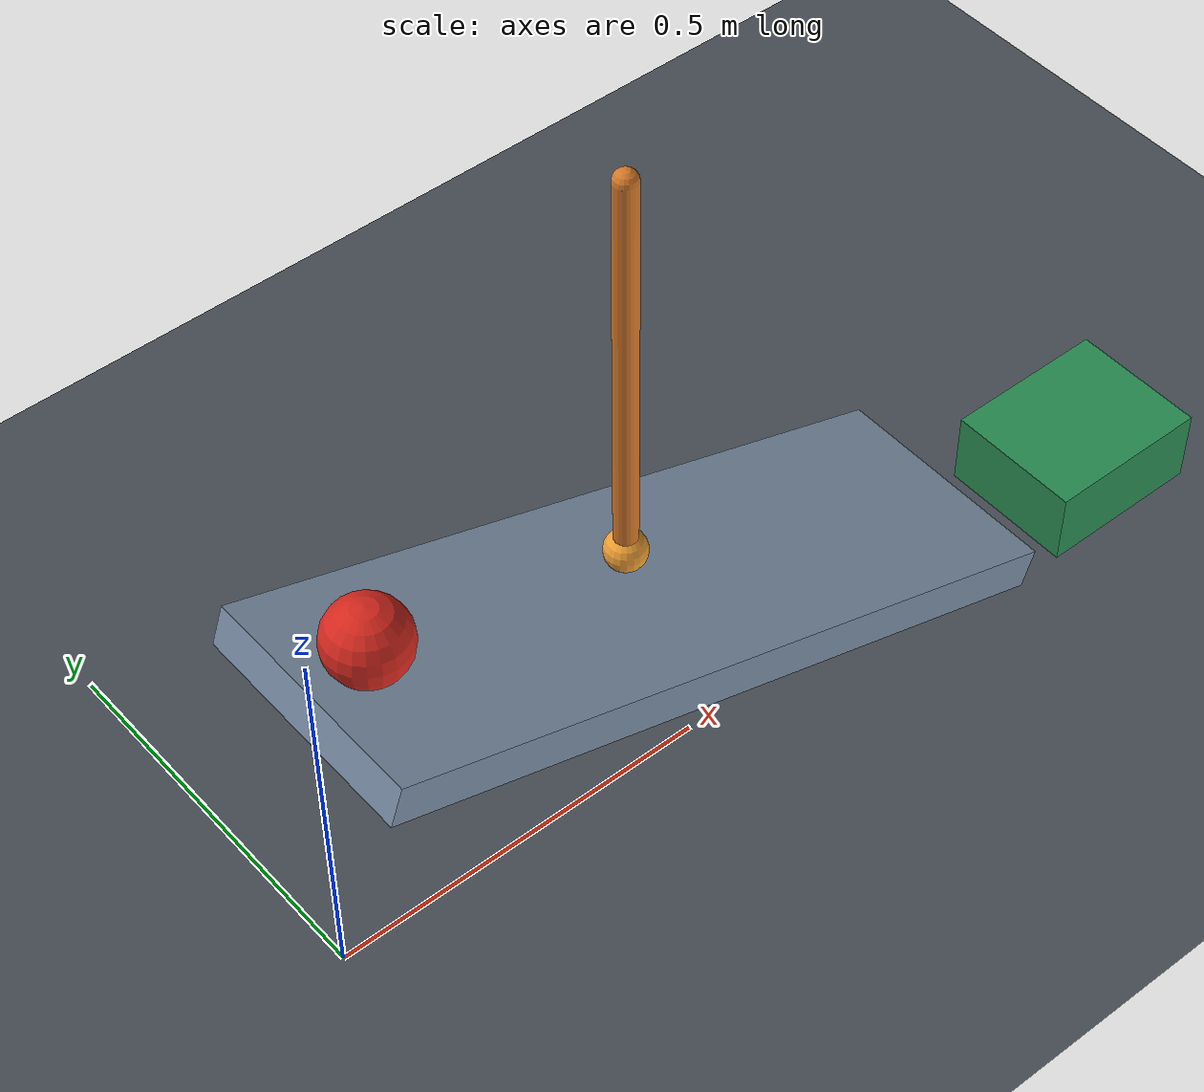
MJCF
<mujoco model="pendulum_ramp_cart">
  <compiler angle="degree" autolimits="true"/>
  <option timestep="0.002" gravity="0 0 -9.81" integrator="implicitfast" solver="Newton" iterations="100" tolerance="1e-10" cone="elliptic"/>
  <size njmax="1000" nconmax="200"/>

  <visual>
    <headlight ambient="0.35 0.35 0.35" diffuse="0.7 0.7 0.7" specular="0.2 0.2 0.2"/>
    <map znear="0.01" zfar="30"/>
  </visual>

  <!-- Sliding friction is 0.68. The other coefficients are torsional and rolling resistance. -->
  <!-- Contact damping ratio 0.6901 targets restitution 0.05 for an isolated impact. -->

  <worldbody>
    <light name="main_light" pos="0.5 -2 4" dir="0 0 -1" directional="true"/>
    <camera name="overview" pos="1 -3.5 1.8" xyaxes="1 0 0 0 0.35 0.93675"/>

    <geom name="floor" type="plane" pos="0 0 0" size="5 3 0.1" friction="0.68 0.001 0.005" condim="6" solref="0.006 0.6901" solimp="0.99 0.99 0.001" rgba="0.28 0.31 0.34 1"/>

    <!-- Ramp top: 0.95 m along its incline, 0.30 m wide, inclined 19 degrees. -->
    <!-- Its downhill top edge is at x=0.898242647, z=0.15. -->
    <body name="ramp1" pos="0.449121323 0 0.304644873" euler="0 19 0">
      <geom name="ramp1_surface" type="box" pos="0 0 -0.025" size="0.475 0.15 0.025" friction="0.68 0.001 0.005" condim="6" solref="0.006 0.6901" solimp="0.99 0.99 0.001" rgba="0.48 0.56 0.65 1"/>
    </body>

    <!-- The pendulum extends 0.55 m below its pivot and has total mass 0.40 kg. -->
    <!-- Positive initial angle places it left of vertical; gravity drives negative rotation about +y. -->
    <body name="pendulum1" pos="0.403972075 0 0.906900485">
      <joint name="pendulum1_hinge" type="hinge" pos="0 0 0" axis="0 1 0" damping="0.04"/>
      <geom name="pendulum1_rod" type="capsule" fromto="0 0 -0.014 0 0 -0.525" size="0.014" mass="0.38" friction="0.68 0.001 0.005" condim="6" solref="0.006 0.6901" solimp="0.99 0.99 0.001" rgba="0.85 0.48 0.16 1"/>
      <geom name="pendulum1_tip" type="sphere" pos="0 0 -0.525" size="0.025" mass="0.02" friction="0.68 0.001 0.005" condim="6" solref="0.006 0.6901" solimp="0.99 0.99 0.001" rgba="0.95 0.63 0.20 1"/>
    </body>

    <!-- Initially supported 0.06 m down the ramp from its high edge. -->
    <body name="ball1" pos="0.073009522 0 0.487031586">
      <freejoint name="ball1_free"/>
      <geom name="ball1_sphere" type="sphere" size="0.05" mass="0.20" friction="0.68 0.001 0.005" condim="6" solref="0.006 0.6901" solimp="0.99 0.99 0.001" rgba="0.85 0.16 0.12 1"/>
    </body>

    <!-- Cart's near face is x=1.018242647: a 0.12 m horizontal gap beyond the ramp. -->
    <body name="cart1" pos="1.128242647 0 0.05">
      <joint name="cart1_slide" type="slide" axis="1 0 0" damping="0.20"/>
      <geom name="cart1_chassis" type="box" size="0.11 0.09 0.05" mass="0.50" friction="0.68 0.001 0.005" condim="6" solref="0.006 0.6901" solimp="0.99 0.99 0.001" rgba="0.16 0.55 0.32 1"/>
    </body>
  </worldbody>

  <keyframe>
    <!-- Keyframe joint angles are radians. Every initial velocity is zero. -->
    <key name="start" time="0" qpos="0.959931089 0.073009522 0 0.487031586 1 0 0 0 0" qvel="0 0 0 0 0 0 0 0"/>
  </keyframe>
</mujoco>
